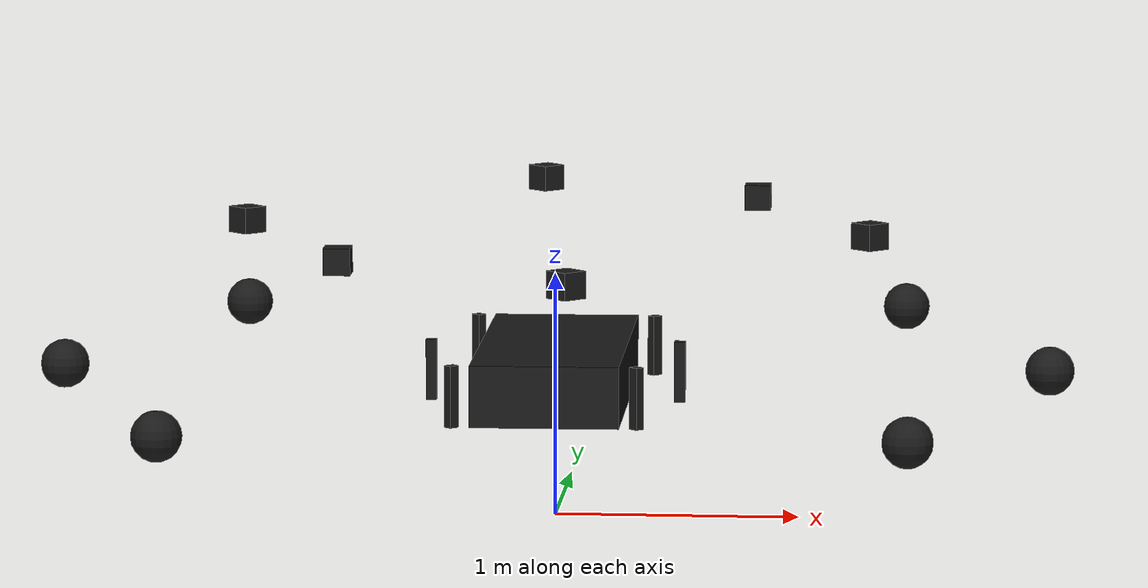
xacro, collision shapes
<?xml version="1.0"?>
<robot xmlns:xacro="http://www.ros.org/wiki/xacro" name="robot">
    <material name="shell_color">
        <color rgba="1 1 1 1" />
    </material>
    <material name="body_color">
        <color rgba="0.1 0.1 0.1 1" />
    </material>
    <material name="foot_color">
        <color rgba="0 0.75 1 1" />
    </material>

    <!-- Params -->

    <xacro:property name="body_length" value="1.4" />
    <xacro:property name="body_width" value="0.6" />
    <xacro:property name="body_height" value="0.25" />

    <xacro:property name="shoulder_length" value="0.044" />
    <xacro:property name="shoulder_width" value="0.038" />

    <xacro:property name="leg_length" value="0.1075" />
    <xacro:property name="leg_width" value="0.1075" />
    <xacro:property name="leg_height" value="0.1075" />
    <xacro:property name="foot_length" value="0.130" />

    <xacro:property name="toe_radius" value="0.1" />
    <xacro:property name="toe_width" value="0.020" />
    <xacro:property name="shift" value="-1.015" />
    <xacro:property name="shiftx" value="0.38" />
    <xacro:property name="shifty" value="0.6" />

    <xacro:property name="leg_x" value="0.37" />
    <xacro:property name="leg_x_center" value="0.51" />
    <xacro:property name="leg_y" value="0.69" />
    <xacro:property name="leg_y_center" value="0" />
    <xacro:property name="shiftz" value="0" />

    <xacro:property name="front_left_angle" value="2.35619" />
    <xacro:property name="front_right_angle" value="0.785398" />
    <xacro:property name="middle_left_angle" value="3.14159" />
    <xacro:property name="middle_right_angle" value="0" />
    <xacro:property name="back_left_angle" value="-2.35619" />
    <xacro:property name="back_right_angle" value="-0.785398" />

    <!-- Macros -->

    <xacro:macro name="gen_shoulder" params="name">
        <link name="${name}">
            <visual>
                <geometry>
                    <mesh filename="package://stl/joint.stl" scale="0.01 0.01 0.01" />
                </geometry>
                <origin rpy="0 0 3.14159" xyz="-0.12 -0.05 0.4" />
                <material name="body_color" />
            </visual>
            <collision>
                <geometry>
                    <box size="${shoulder_length} ${shoulder_width} ${body_height}" />
                </geometry>
                <origin rpy="0 0 0" xyz="0 0 0.6" />
            </collision>
            <inertial>
                <mass value="0.01" />
                <inertia ixx="0.0001" ixy="0" ixz="0" iyy="0.0001" iyz="0" izz="0.0001" />
            </inertial>
        </link>
    </xacro:macro>

    <xacro:macro name="gen_leg" params="name">
        <link name="${name}">
            <visual>
                <geometry>
                    <mesh filename="package://stl/middle_joint.stl" scale="0.01 0.01 0.01" />
                </geometry>
                <origin rpy="0 0 0" xyz="-1.7142 0 -0.011" />
                <material name="body_color" />
            </visual>
            <collision>
                <geometry>
                    <box size="${leg_length} ${leg_width} ${leg_height}" />
                </geometry>
                <origin rpy="0 0 0" xyz="0 0 0.6" />
            </collision>
            <inertial>
                <mass value="0.01" />
                <inertia ixx="0.0001" ixy="0" ixz="0" iyy="0.0001" iyz="0" izz="0.0001" />
            </inertial>
        </link>
    </xacro:macro>

    <xacro:macro name="gen_foot" params="name">
        <link name="${name}">
            <visual>
                <geometry>
                    <mesh filename="package://stl/foot.stl" scale="0.01 0.01 0.01" />
                </geometry>
                <origin rpy="0 3.14159 0" xyz="0.98 -0.485 0.0225" />
                <material name="body_color" />
            </visual>
            <collision>
                <geometry>
                    <sphere radius="${toe_radius}" />
                </geometry>
                <origin rpy="0 0 0" xyz="-0.8 0.98 0.0225" />
                <contact_coefficients mu="1.1" />
            </collision>
            <inertial>
                <mass value="0.01" />
                <inertia ixx="0.0001" ixy="0" ixz="0" iyy="0.0001" iyz="0" izz="0.0001" />
            </inertial>
        </link>
    </xacro:macro>

    <!-- Macros joints -->

    <xacro:macro name="gen_shoulder_joint" params="pos shiftx shifty angle">
        <joint name="${pos}_shoulder" type="revolute">
            <parent link="base_link" />
            <child link="${pos}_shoulder_link" />
            <axis xyz="0 0 1" />
            <origin rpy="0 0 ${angle}" xyz="${shiftx} ${shifty} 0" />
            <limit effort="1000.0" lower="-0.548" upper="0.548" velocity="0.7" />
            <dynamics damping="0.0" friction="0.5" />
        </joint>
    </xacro:macro>

    <xacro:macro name="gen_leg_joint" params="pos shift">
        <joint name="${pos}_leg" type="revolute">
            <parent link="${pos}_shoulder_link" />
            <child link="${pos}_leg_link" />
            <axis xyz="0 1 0" />
            <origin rpy="0 0 0" xyz="-0.28 ${shift} 0.59" />
            <limit effort="1000.0" lower="-2.666" upper="1.548" velocity="1" />
            <dynamics damping="0.0" friction="0.0" />
        </joint>
    </xacro:macro>

    <xacro:macro name="gen_foot_joint" params="pos">
        <joint name="${pos}_foot" type="revolute">
            <parent link="${pos}_leg_link" />
            <child link="${pos}_foot_link" />
            <axis xyz="0 1 0" />
            <origin rpy="0 0 0" xyz="-0.43 0 -0" />
            <limit effort="1000.0" lower="-2.6" upper="0.1" velocity="1" />
            <dynamics damping="0.0" friction="0.5" />
        </joint>
    </xacro:macro>

    <!-- Leg macros -->

    <xacro:macro name="gen_full_leg_joint" params="pos shiftx shifty shift angle">
        <xacro:gen_shoulder name="${pos}_shoulder_link" />
        <xacro:gen_leg name="${pos}_leg_link" />
        <xacro:gen_foot name="${pos}_foot_link" />

        <xacro:gen_shoulder_joint pos="${pos}" shiftx="${shiftx}" shifty="${shifty}"
            angle="${angle}" />
        <xacro:gen_leg_joint pos="${pos}" shift="${shift}" />
        <xacro:gen_foot_joint pos="${pos}" />
    </xacro:macro>

    <!-- Robot Body -->
    <link name="base_link">
        <visual>
            <geometry>
                <mesh filename="package://stl/body.stl" scale="0.01 0.01 0.01" />
            </geometry>
            <material name="body_color" />
            <origin rpy="0 0 0" xyz="-0.286 -0.6 0.40" />
        </visual>

        <collision>
            <geometry>
                <box size="${body_width} ${body_length} ${body_height}" />
            </geometry>
            <origin rpy="0 0 0" xyz="0 0 0.6" />
        </collision>
        <inertial>
            <mass value="0.05" />
            <inertia ixx="0.0001" ixy="0" ixz="0" iyy="0.0001" iyz="0" izz="0.0001" />
        </inertial>
    </link>

    <xacro:gen_full_leg_joint pos="front_left" shiftx="${leg_x}" shifty="-${leg_y}" shift="${shift}"
        angle="${front_left_angle}" />
    <xacro:gen_full_leg_joint pos="front_right" shiftx="-${leg_x}" shifty="-${leg_y}"
        shift="${shift}" angle="${front_right_angle}" />

    <xacro:gen_full_leg_joint pos="middle_left" shiftx="${leg_x_center}" shifty="${leg_y_center}"
        shift="${shift}"
        angle="${middle_left_angle}" />
    <xacro:gen_full_leg_joint pos="middle_right" shiftx="-${leg_x_center}" shifty="${leg_y_center}"
        shift="${shift}" angle="${middle_right_angle}" />

    <xacro:gen_full_leg_joint pos="back_left" shiftx="${leg_x}" shifty="${leg_y}" shift="${shift}"
        angle="${back_left_angle}" />
    <xacro:gen_full_leg_joint pos="back_right" shiftx="-${leg_x}" shifty="${leg_y}" shift="${shift}"
        angle="${back_right_angle}" />
</robot>
